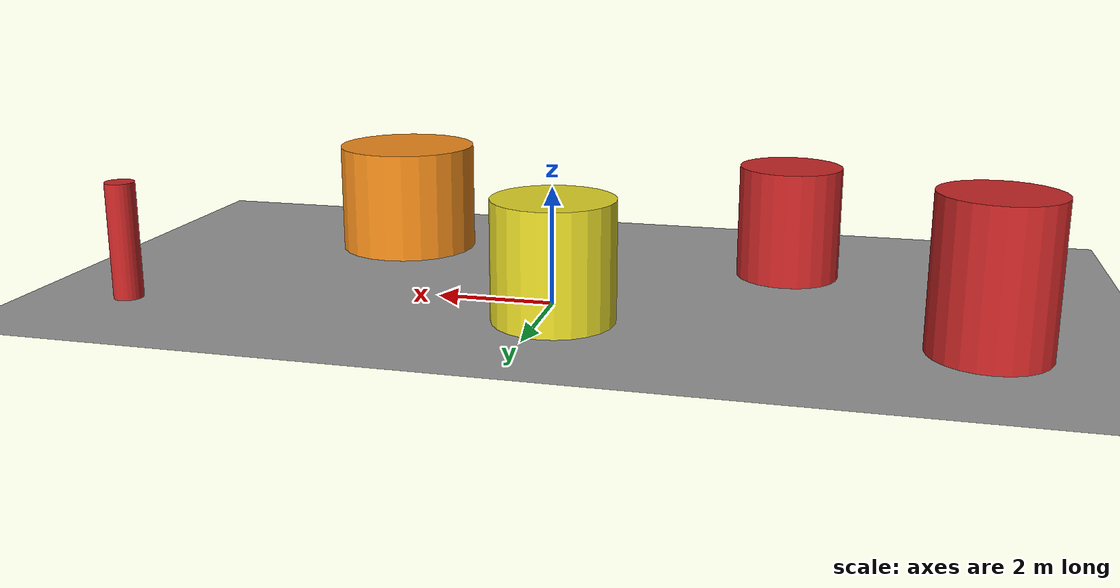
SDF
<sdf version="1.7">
 <world name="default">
  <gravity>0 0 -9.8</gravity>
  <magnetic_field>6e-06 2.3e-05 -4.2e-05</magnetic_field>
  <atmosphere type="adiabatic"/>
  <physics name="default_physics" default="0" type="ode">
   <max_step_size>0.001</max_step_size>
   <real_time_factor>1</real_time_factor>
   <real_time_update_rate>1000</real_time_update_rate>
  </physics>
  <scene><ambient>0.4 0.4 0.4 1</ambient><background>0.8 0.8 0.8 1</background><shadows>1</shadows></scene>
  <audio><device>default</device></audio>
  <spherical_coordinates>
   <surface_model>EARTH_WGS84</surface_model>
   <latitude_deg>0</latitude_deg>
   <longitude_deg>0</longitude_deg>
   <elevation>0</elevation>
   <heading_deg>0</heading_deg>
  </spherical_coordinates>
  <model name="Untitled"><pose>0.075 0 0 0 -0 0</pose><static>1</static></model>
  <model name="cylinder_0">
   <link name="link">
    <inertial>
     <mass>0.128591</mass>
     <inertia>
      <ixx>0.00474038</ixx>
      <ixy>0</ixy>
      <ixz>0</ixz>
      <iyy>0.00474038</iyy>
      <iyz>0</iyz>
      <izz>0.00414085</izz>
     </inertia>
    </inertial>
    <visual name="visual">
     <geometry><cylinder><radius>0.250001</radius><length>2</length></cylinder></geometry>
     <material>
      <script><name>Gazebo/RedBright</name><uri>file://media/materials/scripts/gazebo.material</uri></script>
     </material>
    </visual>
    <collision name="collision">
     <geometry><cylinder><radius>0.250001</radius><length>2</length></cylinder></geometry>
     <surface>
      <friction>
       <ode><mu>1</mu><mu2>1</mu2><fdir1>0 0 0</fdir1><slip1>0</slip1><slip2>0</slip2></ode>
       <torsional>
        <coefficient>1</coefficient>
        <patch_radius>0</patch_radius>
        <surface_radius>0</surface_radius>
        <use_patch_radius>1</use_patch_radius>
        <ode><slip>0</slip></ode>
       </torsional>
      </friction>
      <bounce><restitution_coefficient>0</restitution_coefficient><threshold>1e+06</threshold></bounce>
      <contact>
       <collide_without_contact>0</collide_without_contact>
       <collide_without_contact_bitmask>1</collide_without_contact_bitmask>
       <collide_bitmask>1</collide_bitmask>
       <ode>
        <soft_cfm>0</soft_cfm>
        <soft_erp>0.2</soft_erp>
        <kp>1e+13</kp>
        <kd>1</kd>
        <max_vel>0.01</max_vel>
        <min_depth>0</min_depth>
       </ode>
       <bullet>
        <split_impulse>1</split_impulse>
        <split_impulse_penetration_threshold>-0.01</split_impulse_penetration_threshold>
        <soft_cfm>0</soft_cfm>
        <soft_erp>0.2</soft_erp>
        <kp>1e+13</kp>
        <kd>1</kd>
       </bullet>
      </contact>
     </surface>
    </collision>
   </link>
   <static>0</static>
   <pose>7.12334 1.34704 0.999994 0 -0 0.000906</pose>
  </model>
  <model name="ground_plane_0">
   <static>1</static>
   <link name="link">
    <collision name="collision">
     <geometry><plane><normal>0 0 1</normal><size>100 100</size></plane></geometry>
     <surface><friction><ode><mu>100</mu><mu2>50</mu2></ode></friction></surface>
    </collision>
    <visual name="visual">
     <cast_shadows>0</cast_shadows>
     <geometry><plane><normal>0 0 1</normal><size>100 100</size></plane></geometry>
     <material>
      <script><uri>file://media/materials/scripts/gazebo.material</uri><name>Gazebo/Grey</name></script>
     </material>
    </visual>
   </link>
   <pose>-5.65239 3.59737 0 0 -0 0</pose>
  </model>
  <light name="sun" type="directional">
   <pose>66.4392 0.101862 10 0 -0 0</pose>
   <diffuse>0.8 0.8 0.8 1</diffuse>
   <specular>0.2 0.2 0.2 1</specular>
   <attenuation>
    <range>1000</range>
    <constant>0.9</constant>
    <linear>0.01</linear>
    <quadratic>0.001</quadratic>
   </attenuation>
   <direction>-0.5 0.1 -0.9</direction>
   <spot><inner_angle>0</inner_angle><outer_angle>0</outer_angle><falloff>0</falloff></spot>
  </light>
  <model name="cylinder_1">
   <link name="link">
    <inertial>
     <mass>0.128591</mass>
     <inertia>
      <ixx>0.00474038</ixx>
      <ixy>0</ixy>
      <ixz>0</ixz>
      <iyy>0.00474038</iyy>
      <iyz>0</iyz>
      <izz>0.00414085</izz>
     </inertia>
    </inertial>
    <visual name="visual">
     <geometry><cylinder><radius>1.28671</radius><length>2</length></cylinder></geometry>
     <material>
      <script><name>Gazebo/Orange</name><uri>file://media/materials/scripts/gazebo.material</uri></script>
      <shader type="pixel"><normal_map>__default__</normal_map></shader>
      <ambient>1 0.509 0.047 1</ambient>
      <diffuse>1 0.509 0.047 1</diffuse>
      <specular>0.5 0.5 0.5 1</specular>
      <emissive>0 0 0 1</emissive>
     </material>
    </visual>
    <collision name="collision">
     <geometry><cylinder><radius>1.28671</radius><length>2</length></cylinder></geometry>
     <surface>
      <friction>
       <ode><mu>1</mu><mu2>1</mu2><fdir1>0 0 0</fdir1><slip1>0</slip1><slip2>0</slip2></ode>
       <torsional>
        <coefficient>1</coefficient>
        <patch_radius>0</patch_radius>
        <surface_radius>0</surface_radius>
        <use_patch_radius>1</use_patch_radius>
        <ode><slip>0</slip></ode>
       </torsional>
      </friction>
      <bounce><restitution_coefficient>0</restitution_coefficient><threshold>1e+06</threshold></bounce>
      <contact>
       <collide_without_contact>0</collide_without_contact>
       <collide_without_contact_bitmask>1</collide_without_contact_bitmask>
       <collide_bitmask>1</collide_bitmask>
       <ode>
        <soft_cfm>0</soft_cfm>
        <soft_erp>0.2</soft_erp>
        <kp>1e+13</kp>
        <kd>1</kd>
        <max_vel>0.01</max_vel>
        <min_depth>0</min_depth>
       </ode>
       <bullet>
        <split_impulse>1</split_impulse>
        <split_impulse_penetration_threshold>-0.01</split_impulse_penetration_threshold>
        <soft_cfm>0</soft_cfm>
        <soft_erp>0.2</soft_erp>
        <kp>1e+13</kp>
        <kd>1</kd>
       </bullet>
      </contact>
     </surface>
    </collision>
   </link>
   <static>0</static>
   <pose>3.71565 -3.17537 0.999998 1e-06 1e-06 0.000916</pose>
  </model>
  <model name="cylinder_2">
   <link name="link">
    <inertial>
     <mass>0.128591</mass>
     <inertia>
      <ixx>0.00474038</ixx>
      <ixy>0</ixy>
      <ixz>0</ixz>
      <iyy>0.00474038</iyy>
      <iyz>0</iyz>
      <izz>0.00414085</izz>
     </inertia>
    </inertial>
    <visual name="visual">
     <geometry><cylinder><radius>1.01635</radius><length>2</length></cylinder></geometry>
     <material>
      <script><name>Gazebo/Yellow</name><uri>file://media/materials/scripts/gazebo.material</uri></script>
      <shader type="pixel"><normal_map>__default__</normal_map></shader>
      <ambient>0.988 0.914 0.31 1</ambient>
      <diffuse>0 0 0 1</diffuse>
      <specular>0 0 0 1</specular>
      <emissive>0 0 0 1</emissive>
     </material>
    </visual>
    <collision name="collision">
     <geometry><cylinder><radius>1.01635</radius><length>2</length></cylinder></geometry>
     <surface>
      <friction>
       <ode><mu>1</mu><mu2>1</mu2><fdir1>0 0 0</fdir1><slip1>0</slip1><slip2>0</slip2></ode>
       <torsional>
        <coefficient>1</coefficient>
        <patch_radius>0</patch_radius>
        <surface_radius>0</surface_radius>
        <use_patch_radius>1</use_patch_radius>
        <ode><slip>0</slip></ode>
       </torsional>
      </friction>
      <bounce><restitution_coefficient>0</restitution_coefficient><threshold>1e+06</threshold></bounce>
      <contact>
       <collide_without_contact>0</collide_without_contact>
       <collide_without_contact_bitmask>1</collide_without_contact_bitmask>
       <collide_bitmask>1</collide_bitmask>
       <ode>
        <soft_cfm>0</soft_cfm>
        <soft_erp>0.2</soft_erp>
        <kp>1e+13</kp>
        <kd>1</kd>
        <max_vel>0.01</max_vel>
        <min_depth>0</min_depth>
       </ode>
       <bullet>
        <split_impulse>1</split_impulse>
        <split_impulse_penetration_threshold>-0.01</split_impulse_penetration_threshold>
        <soft_cfm>0</soft_cfm>
        <soft_erp>0.2</soft_erp>
        <kp>1e+13</kp>
        <kd>1</kd>
       </bullet>
      </contact>
     </surface>
    </collision>
   </link>
   <static>0</static>
   <pose>-0.217853 0.825371 0.999994 0 0 -0.004038</pose>
  </model>
  <model name="cylinder_3">
   <link name="link">
    <inertial>
     <mass>0.128591</mass>
     <inertia>
      <ixx>0.00474038</ixx>
      <ixy>0</ixy>
      <ixz>0</ixz>
      <iyy>0.00474038</iyy>
      <iyz>0</iyz>
      <izz>0.00414085</izz>
     </inertia>
    </inertial>
    <visual name="visual">
     <geometry><cylinder><radius>0.933745</radius><length>2.44616</length></cylinder></geometry>
     <material>
      <script><name>Gazebo/RedBright</name><uri>file://media/materials/scripts/gazebo.material</uri></script>
      <shader type="pixel"><normal_map>__default__</normal_map></shader>
      <ambient>0.447 0.624 0.812 1</ambient>
      <diffuse>0.87 0.26 0.07 1</diffuse>
      <specular>0.87 0.26 0.07 1</specular>
      <emissive>0 0 0 1</emissive>
     </material>
    </visual>
    <collision name="collision">
     <geometry><cylinder><radius>0.933745</radius><length>2.44616</length></cylinder></geometry>
     <surface>
      <friction>
       <ode><mu>1</mu><mu2>1</mu2><fdir1>0 0 0</fdir1><slip1>0</slip1><slip2>0</slip2></ode>
       <torsional>
        <coefficient>1</coefficient>
        <patch_radius>0</patch_radius>
        <surface_radius>0</surface_radius>
        <use_patch_radius>1</use_patch_radius>
        <ode><slip>0</slip></ode>
       </torsional>
      </friction>
      <bounce><restitution_coefficient>0</restitution_coefficient><threshold>1e+06</threshold></bounce>
      <contact>
       <collide_without_contact>0</collide_without_contact>
       <collide_without_contact_bitmask>1</collide_without_contact_bitmask>
       <collide_bitmask>1</collide_bitmask>
       <ode>
        <soft_cfm>0</soft_cfm>
        <soft_erp>0.2</soft_erp>
        <kp>1e+13</kp>
        <kd>1</kd>
        <max_vel>0.01</max_vel>
        <min_depth>0</min_depth>
       </ode>
       <bullet>
        <split_impulse>1</split_impulse>
        <split_impulse_penetration_threshold>-0.01</split_impulse_penetration_threshold>
        <soft_cfm>0</soft_cfm>
        <soft_erp>0.2</soft_erp>
        <kp>1e+13</kp>
        <kd>1</kd>
       </bullet>
      </contact>
     </surface>
    </collision>
   </link>
   <static>0</static>
   <pose>-6.86096 0.878366 1.22307 1e-06 -0 0.002644</pose>
  </model>
  <model name="cylinder_4">
   <link name="link">
    <inertial>
     <mass>0.128591</mass>
     <inertia>
      <ixx>0.00474038</ixx>
      <ixy>0</ixy>
      <ixz>0</ixz>
      <iyy>0.00474038</iyy>
      <iyz>0</iyz>
      <izz>0.00414085</izz>
     </inertia>
    </inertial>
    <visual name="visual">
     <geometry><cylinder><radius>0.901683</radius><length>2</length></cylinder></geometry>
     <material>
      <script><name>Gazebo/RedBright</name><uri>file://media/materials/scripts/gazebo.material</uri></script>
      <shader type="pixel"><normal_map>__default__</normal_map></shader>
      <ambient>0.541 0.886 0.204 1</ambient>
      <diffuse>0.87 0.26 0.07 1</diffuse>
      <specular>0.87 0.26 0.07 1</specular>
      <emissive>0 0 0 1</emissive>
     </material>
    </visual>
    <collision name="collision">
     <geometry><cylinder><radius>0.901683</radius><length>2</length></cylinder></geometry>
     <surface>
      <friction>
       <ode><mu>1</mu><mu2>1</mu2><fdir1>0 0 0</fdir1><slip1>0</slip1><slip2>0</slip2></ode>
       <torsional>
        <coefficient>1</coefficient>
        <patch_radius>0</patch_radius>
        <surface_radius>0</surface_radius>
        <use_patch_radius>1</use_patch_radius>
        <ode><slip>0</slip></ode>
       </torsional>
      </friction>
      <bounce><restitution_coefficient>0</restitution_coefficient><threshold>1e+06</threshold></bounce>
      <contact>
       <collide_without_contact>0</collide_without_contact>
       <collide_without_contact_bitmask>1</collide_without_contact_bitmask>
       <collide_bitmask>1</collide_bitmask>
       <ode>
        <soft_cfm>0</soft_cfm>
        <soft_erp>0.2</soft_erp>
        <kp>1e+13</kp>
        <kd>1</kd>
        <max_vel>0.01</max_vel>
        <min_depth>0</min_depth>
       </ode>
       <bullet>
        <split_impulse>1</split_impulse>
        <split_impulse_penetration_threshold>-0.01</split_impulse_penetration_threshold>
        <soft_cfm>0</soft_cfm>
        <soft_erp>0.2</soft_erp>
        <kp>1e+13</kp>
        <kd>1</kd>
       </bullet>
      </contact>
     </surface>
    </collision>
   </link>
   <static>0</static>
   <pose>-3.69259 -2.73769 0.999993 0 -0 0.00111</pose>
  </model>
 </world>
</sdf>
